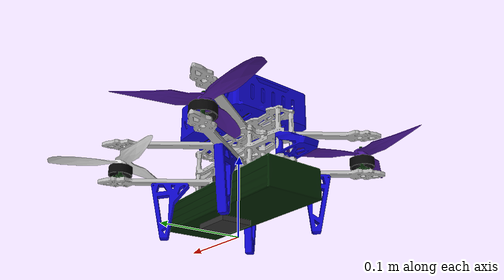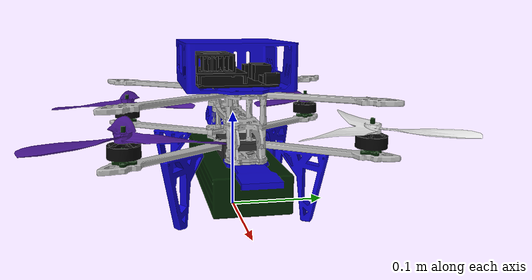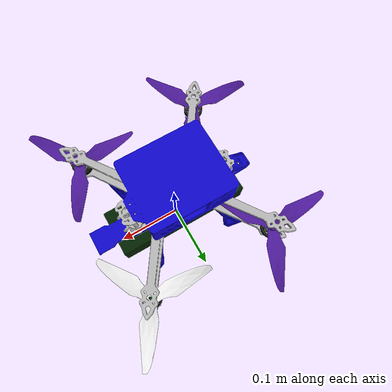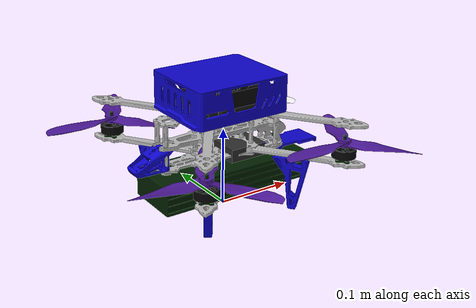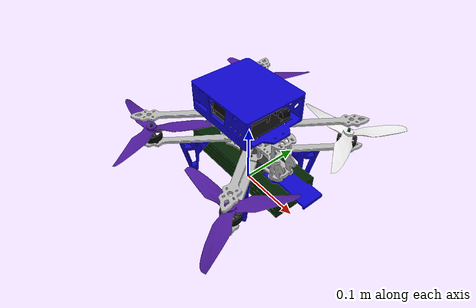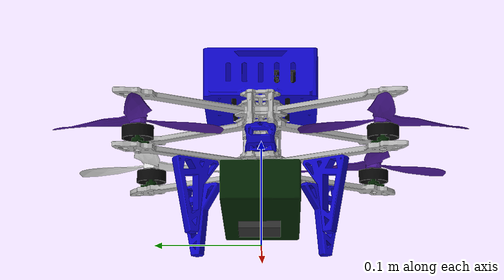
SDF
<?xml version="1.0" encoding="UTF-8"?>
<sdf version='1.9'>
  <model name='coisaruim_mono_cam'>
    <include merge='true'>
      <uri>coisaruim</uri>
    </include>
    <include merge='true'>
      <uri>model://mono_cam</uri>
      <pose relative_to="base_link">0.000709 0.001927 0.077389 0 1.57079632679 0</pose>
    </include>
    <joint name="CameraJoint" type="fixed">
      <parent>base_link</parent>
      <child>mono_cam/base_link</child>
    </joint>

  </model>
</sdf>

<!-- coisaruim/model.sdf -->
<sdf version='1.9'>
  <model name='coisaruim'>
    <include merge='true'>
      <uri>model://coisaruim_base</uri>
    </include>
    <plugin filename="gz-sim-multicopter-motor-model-system" name="gz::sim::systems::MulticopterMotorModel">
      <jointName>rotor_0_joint</jointName>
      <linkName>rotor_0</linkName>
      <turningDirection>ccw</turningDirection>
      <timeConstantUp>0.0125</timeConstantUp>
      <timeConstantDown>0.025</timeConstantDown>
      <maxRotVelocity>1000.0</maxRotVelocity>
      <motorConstant>3.062e-05</motorConstant>
      <momentConstant>0.016</momentConstant>
      <commandSubTopic>command/motor_speed</commandSubTopic>
      <motorNumber>0</motorNumber>
      <rotorDragCoefficient>8.06428e-05</rotorDragCoefficient>
      <rollingMomentCoefficient>1e-06</rollingMomentCoefficient>
      <rotorVelocitySlowdownSim>10</rotorVelocitySlowdownSim>
      <motorType>velocity</motorType>
    </plugin>
    <plugin filename="gz-sim-multicopter-motor-model-system" name="gz::sim::systems::MulticopterMotorModel">
      <jointName>rotor_1_joint</jointName>
      <linkName>rotor_1</linkName>
      <turningDirection>ccw</turningDirection>
      <timeConstantUp>0.0125</timeConstantUp>
      <timeConstantDown>0.025</timeConstantDown>
      <maxRotVelocity>1000.0</maxRotVelocity>
      <motorConstant>3.062e-05</motorConstant>
      <momentConstant>0.016</momentConstant>
      <commandSubTopic>command/motor_speed</commandSubTopic>
      <motorNumber>1</motorNumber>
      <rotorDragCoefficient>8.06428e-05</rotorDragCoefficient>
      <rollingMomentCoefficient>1e-06</rollingMomentCoefficient>
      <rotorVelocitySlowdownSim>10</rotorVelocitySlowdownSim>
      <motorType>velocity</motorType>
    </plugin>
    <plugin filename="gz-sim-multicopter-motor-model-system" name="gz::sim::systems::MulticopterMotorModel">
      <jointName>rotor_2_joint</jointName>
      <linkName>rotor_2</linkName>
      <turningDirection>cw</turningDirection>
      <timeConstantUp>0.0125</timeConstantUp>
      <timeConstantDown>0.025</timeConstantDown>
      <maxRotVelocity>1000.0</maxRotVelocity>
      <motorConstant>3.062e-05</motorConstant>
      <momentConstant>0.016</momentConstant>
      <commandSubTopic>command/motor_speed</commandSubTopic>
      <motorNumber>2</motorNumber>
      <rotorDragCoefficient>8.06428e-05</rotorDragCoefficient>
      <rollingMomentCoefficient>1e-06</rollingMomentCoefficient>
      <rotorVelocitySlowdownSim>10</rotorVelocitySlowdownSim>
      <motorType>velocity</motorType>
    </plugin>
    <plugin filename="gz-sim-multicopter-motor-model-system" name="gz::sim::systems::MulticopterMotorModel">
      <jointName>rotor_3_joint</jointName>
      <linkName>rotor_3</linkName>
      <turningDirection>cw</turningDirection>
      <timeConstantUp>0.0125</timeConstantUp>
      <timeConstantDown>0.025</timeConstantDown>
      <maxRotVelocity>1000.0</maxRotVelocity>
      <motorConstant>3.062e-05</motorConstant>
      <momentConstant>0.016</momentConstant>
      <commandSubTopic>command/motor_speed</commandSubTopic>
      <motorNumber>3</motorNumber>
      <rotorDragCoefficient>8.06428e-05</rotorDragCoefficient>
      <rollingMomentCoefficient>1e-06</rollingMomentCoefficient>
      <rotorVelocitySlowdownSim>10</rotorVelocitySlowdownSim>
      <motorType>velocity</motorType>
    </plugin>
  </model>
</sdf>

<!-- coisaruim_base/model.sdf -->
<sdf version='1.9'>
  <model name='coisaruim_base'>
    <pose>0 0 0.083 0 0 0</pose>
    <self_collide>false</self_collide>
    <static>false</static>
    <link name="base_link">
      <inertial>
        <mass>2.35</mass>
        <inertia>
          <ixx>0.02166666666666667</ixx>
          <ixy>0</ixy>
          <ixz>0</ixz>
          <iyy>0.02166666666666667</iyy>
          <iyz>0</iyz>
          <izz>0.04000000000000001</izz>
        </inertia>
      </inertial>
      <gravity>true</gravity>
      <velocity_decay/>
      <visual name="base_link_visual">
        <pose>0 0 0 0 0 0</pose>
        <geometry>
          <mesh>
            <scale>1 1 1</scale>
            <uri>model://coisaruim_base/meshes/CoisaRuim.dae</uri>
          </mesh>
        </geometry>
      </visual>
      <collision name="base_link_collision">
        <pose>0 0 0 1.5707 0 -1.5707</pose>
        <geometry>
          <mesh>
            <scale>1 1 1</scale>
            <uri>model://coisaruim_base/meshes/CoisaRuim_Collision.obj</uri>
          </mesh>
        </geometry>
        <surface>
          <contact>
            <ode>
              <min_depth>0.001</min_depth>
              <max_vel>0</max_vel>
            </ode>
          </contact>
          <friction>
            <ode/>
          </friction>
        </surface>
      </collision>
      <sensor name="air_pressure_sensor" type="air_pressure">
        <always_on>1</always_on>
        <update_rate>50</update_rate>
        <air_pressure>
          <pressure>
            <noise type="gaussian">
              <mean>0</mean>
              <stddev>0.01</stddev>
            </noise>
          </pressure>
        </air_pressure>
      </sensor>
      <sensor name="imu_sensor" type="imu">
        <always_on>1</always_on>
        <update_rate>250</update_rate>
        <imu>
          <angular_velocity>
            <x>
              <noise type="gaussian">
                <mean>0</mean>
                <stddev>0.00018665</stddev>
                <dynamic_bias_stddev>3.8785e-05</dynamic_bias_stddev>
                <dynamic_bias_correlation_time>1000</dynamic_bias_correlation_time>
              </noise>
            </x>
            <y>
              <noise type="gaussian">
                <mean>0</mean>
                <stddev>0.00018665</stddev>
                <dynamic_bias_stddev>3.8785e-05</dynamic_bias_stddev>
                <dynamic_bias_correlation_time>1000</dynamic_bias_correlation_time>
              </noise>
            </y>
            <z>
              <noise type="gaussian">
                <mean>0</mean>
                <stddev>0.00018665</stddev>
                <dynamic_bias_stddev>3.8785e-05</dynamic_bias_stddev>
                <dynamic_bias_correlation_time>1000</dynamic_bias_correlation_time>
              </noise>
            </z>
          </angular_velocity>
          <linear_acceleration>
            <x>
              <noise type="gaussian">
                <mean>0</mean>
                <stddev>0.00186</stddev>
                <dynamic_bias_stddev>0.006</dynamic_bias_stddev>
                <dynamic_bias_correlation_time>300</dynamic_bias_correlation_time>
              </noise>
            </x>
            <y>
              <noise type="gaussian">
                <mean>0</mean>
                <stddev>0.00186</stddev>
                <dynamic_bias_stddev>0.006</dynamic_bias_stddev>
                <dynamic_bias_correlation_time>300</dynamic_bias_correlation_time>
              </noise>
            </y>
            <z>
              <noise type="gaussian">
                <mean>0</mean>
                <stddev>0.00186</stddev>
                <dynamic_bias_stddev>0.006</dynamic_bias_stddev>
                <dynamic_bias_correlation_time>300</dynamic_bias_correlation_time>
              </noise>
            </z>
          </linear_acceleration>
        </imu>
      </sensor>
      <sensor name="navsat_sensor" type="navsat">
        <always_on>1</always_on>
        <update_rate>30</update_rate>
      </sensor>
    </link>
    <link name="rotor_0">
      <gravity>true</gravity>
      <self_collide>false</self_collide>
      <velocity_decay/>
      <pose>-0.097077 0.1108 0.015857 0 0 0</pose>
      <inertial>
          <mass>0.016076923076923075</mass>
          <inertia>
            <ixx>3.8464910483993325e-07</ixx>
            <iyy>2.6115851691700804e-05</iyy>
            <izz>2.649858234714004e-05</izz>
          </inertia>
        </inertial>
      <visual name="rotor_0_visual">
        <pose>0 0 0 1.5707 0 -1.5707</pose>
        <geometry>
          <mesh>
            <scale>1 1 1</scale>
            <uri>model://coisaruim_base/meshes/7040_prop_CCW.obj</uri>
          </mesh>
        </geometry>
        <material>
          <script>
            <name>Gazebo/Indigo</name>
            <uri>file://media/materials/scripts/gazebo.material</uri>
          </script>
        </material>
      </visual>
      <collision name="rotor_0_collision">
        <pose>0 0 0 0 0 0</pose>
        <geometry>
          <mesh>
            <scale>1 1 1</scale>
            <uri>model://coisaruim_base/meshes/7inProp_Collision.stl</uri>
          </mesh>
        </geometry>
        <surface>
          <contact>
            <ode>
              <min_depth>0.001</min_depth>
              <max_vel>0</max_vel>
            </ode>
          </contact>
          <friction>
            <ode/>
          </friction>
        </surface>
      </collision>
    </link>
    <joint name="rotor_0_joint" type="revolute">
      <parent>base_link</parent>
      <child>rotor_0</child>
      <axis>
        <xyz>0 0 1</xyz>
        <limit>
          <lower>-1e+16</lower>
          <upper>1e+16</upper>
        </limit>
        <dynamics>
          <spring_reference>0</spring_reference>
          <spring_stiffness>0</spring_stiffness>
        </dynamics>
      </axis>
    </joint>
    <link name="rotor_1">
      <gravity>true</gravity>
      <self_collide>false</self_collide>
      <velocity_decay/>
      <pose>0.097077 -0.110699 0.015857 0 0 0</pose>
      <inertial>
          <mass>0.016076923076923075</mass>
          <inertia>
            <ixx>3.8464910483993325e-07</ixx>
            <iyy>2.6115851691700804e-05</iyy>
            <izz>2.649858234714004e-05</izz>
          </inertia>
        </inertial>
      <visual name="rotor_1_visual">
        <pose>0 0 0 1.5707 0 -1.5707</pose>
        <geometry>
          <mesh>
            <scale>1 1 1</scale>
            <uri>model://coisaruim_base/meshes/7040_prop_CCW.obj</uri>
          </mesh>
        </geometry>
        <material>
          <script>
            <name>Gazebo/Indigo</name>
            <uri>file://media/materials/scripts/gazebo.material</uri>
          </script>
        </material>
      </visual>
      <collision name="rotor_1_collision">
        <pose>0 0 0 0 0 0</pose>
        <geometry>
          <mesh>
            <scale>1 1 1</scale>
            <uri>model://coisaruim_base/meshes/7inProp_Collision.stl</uri>
          </mesh>
        </geometry>
        <surface>
          <contact>
            <ode>
              <min_depth>0.001</min_depth>
              <max_vel>0</max_vel>
            </ode>
          </contact>
          <friction>
            <ode/>
          </friction>
        </surface>
      </collision>
    </link>
    <joint name="rotor_1_joint" type="revolute">
      <parent>base_link</parent>
      <child>rotor_1</child>
      <axis>
        <xyz>0 0 1</xyz>
        <limit>
          <lower>-1e+16</lower>
          <upper>1e+16</upper>
        </limit>
        <dynamics>
          <spring_reference>0</spring_reference>
          <spring_stiffness>0</spring_stiffness>
        </dynamics>
      </axis>
    </joint>
    <link name="rotor_2">
      <gravity>true</gravity>
      <self_collide>false</self_collide>
      <velocity_decay/>
      <pose>0.097077 0.1108 0.015857 0 0 0</pose>
      <inertial>
          <mass>0.016076923076923075</mass>
          <inertia>
            <ixx>3.8464910483993325e-07</ixx>
            <iyy>2.6115851691700804e-05</iyy>
            <izz>2.649858234714004e-05</izz>
          </inertia>
        </inertial>
      <visual name="rotor_2_visual">
        <pose>0 0 0 1.5707 0 -1.5707</pose>
        <geometry>
          <mesh>
            <scale>1 1 1</scale>
            <uri>model://coisaruim_base/meshes/7040_prop_CW.obj</uri>
          </mesh>
        </geometry>
        <material>
          <script>
            <name>Gazebo/White</name>
            <uri>file://media/materials/scripts/gazebo.material</uri>
          </script>
        </material>
      </visual>
      <collision name="rotor_2_collision">
        <pose>0 0 0 0 0 0 </pose>
        <geometry>
          <mesh>
            <scale>1 1 1</scale>
            <uri>model://coisaruim_base/meshes/7inProp_Collision.stl</uri>
          </mesh>
        </geometry>
        <surface>
          <contact>
            <ode>
              <min_depth>0.001</min_depth>
              <max_vel>0</max_vel>
            </ode>
          </contact>
          <friction>
            <ode/>
          </friction>
        </surface>
      </collision>
    </link>
    <joint name="rotor_2_joint" type="revolute">
      <parent>base_link</parent>
      <child>rotor_2</child>
      <axis>
        <xyz>0 0 1</xyz>
        <limit>
          <lower>-1e+16</lower>
          <upper>1e+16</upper>
        </limit>
        <dynamics>
          <spring_reference>0</spring_reference>
          <spring_stiffness>0</spring_stiffness>
        </dynamics>
      </axis>
    </joint>
    <link name="rotor_3">
      <gravity>true</gravity>
      <self_collide>false</self_collide>
      <velocity_decay/>
      <pose>-0.097077 -0.110699 0.015857 0 0 0</pose>
      <inertial>
          <mass>0.016076923076923075</mass>
          <inertia>
            <ixx>3.8464910483993325e-07</ixx>
            <iyy>2.6115851691700804e-05</iyy>
            <izz>2.649858234714004e-05</izz>
          </inertia>
        </inertial>
      <visual name="rotor_3_visual">
        <pose>0 0 0 1.5707 0 -1.5707</pose>
        <geometry>
          <mesh>
            <scale>1 1 1</scale>
            <uri>model://coisaruim_base/meshes/7040_prop_CW.obj</uri>
          </mesh>
        </geometry>
        <material>
          <script>
            <name>Gazebo/Indigo</name>
            <uri>file://media/materials/scripts/gazebo.material</uri>
          </script>
        </material>
      </visual>
      <collision name="rotor_3_collision">
        <pose>0 0 0 0 0 0 </pose>
        <geometry>
          <mesh>
            <scale>1 1 1</scale>
            <uri>model://coisaruim_base/meshes/7inProp_Collision.stl</uri>
          </mesh>
        </geometry>
        <surface>
          <contact>
            <ode>
              <min_depth>0.001</min_depth>
              <max_vel>0</max_vel>
            </ode>
          </contact>
          <friction>
            <ode/>
          </friction>
        </surface>
      </collision>
    </link>
    <joint name="rotor_3_joint" type="revolute">
      <parent>base_link</parent>
      <child>rotor_3</child>
      <axis>
        <xyz>0 0 1</xyz>
        <limit>
          <lower>-1e+16</lower>
          <upper>1e+16</upper>
        </limit>
        <dynamics>
          <spring_reference>0</spring_reference>
          <spring_stiffness>0</spring_stiffness>
        </dynamics>
      </axis>
    </joint>
    <plugin filename="gz-sim-odometry-publisher-system" name="gz::sim::systems::OdometryPublisher">
        <odom_frame>odom</odom_frame>
        <robot_base_frame>base_link</robot_base_frame>
        <odom_publish_frequency>50</odom_publish_frequency>
        <dimensions>3</dimensions>

        <odom_topic>/model/coisaruim_mid360_0_range_cam_0/odometry</odom_topic>
        <odom_covariance_topic>/model/coisaruim_mid360_0_range_cam_0/ignored_gt_covariance</odom_covariance_topic>
    </plugin>
  </model>
</sdf>

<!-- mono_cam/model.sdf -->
<sdf version="1.9">
  <model name="mono_cam">
    <pose>0 0 0 0 0 0</pose>
    <self_collide>false</self_collide>
    <static>false</static>

    <link name="mono_cam/base_link">

      <inertial>
        <pose>0.03 0.03 0.03 0 0 0</pose>
        <mass>0.050</mass>
        <inertia>
          <ixx>0.00004</ixx>
          <ixy>0</ixy>
          <ixz>0</ixz>
          <iyy>0.00004</iyy>
          <iyz>0</iyz>
          <izz>0.00004</izz>
        </inertia>
      </inertial>

      <visual name="mono_cam/visual">
        <pose>0.03 0 0.025 0 0 0</pose>
        <geometry>
          <box>
            <size>0.06 0.04 0.05</size>
          </box>
        </geometry>
        <material>
          <ambient>0.18 0.18 0.18 1</ambient>
          <diffuse>0.18 0.18 0.18 1</diffuse>
          <specular>0.05 0.05 0.05 1</specular>
        </material>
      </visual>

      <sensor name="imager" type="camera">
        <pose>0 0 0 0 0 0</pose>

        <camera>

          <image>
            <width>1280</width>
            <height>720</height>
            <format>R8G8B8</format>
          </image>

          <clip>
            <near>0.015</near>
            <far>3000</far>
          </clip>

          <lens>
            <intrinsics>
              <fx>984.0293956169063</fx>
              <fy>978.0169725826389</fy>
              <cx>640.4458836683775</cx>
              <cy>360.4530994081536</cy>
            </intrinsics>

            <distortion>
              <k1>0.009424</k1>
              <k2>-0.005972</k2>
              <k3>0.0</k3>
              <p1>0.010292</p1>
              <p2>-0.006974</p2>
            </distortion>
          </lens>

        </camera>

        <always_on>true</always_on>
        <update_rate>30</update_rate>
        <visualize>true</visualize>
        <topic>camera</topic>

      </sensor>

      <gravity>true</gravity>
      <velocity_decay/>

    </link>
  </model>
</sdf>
